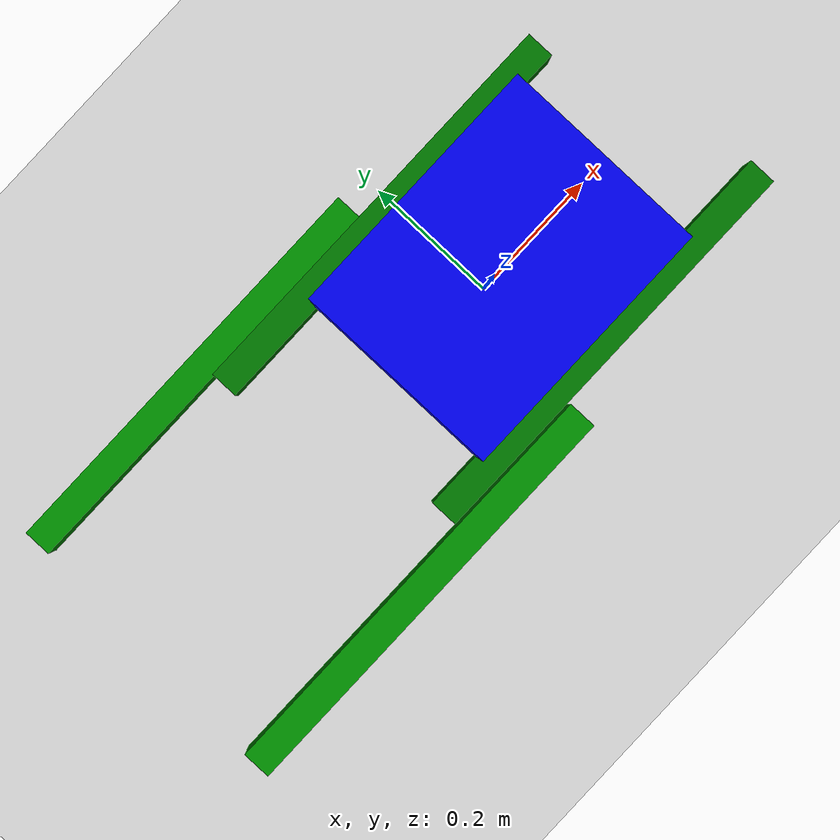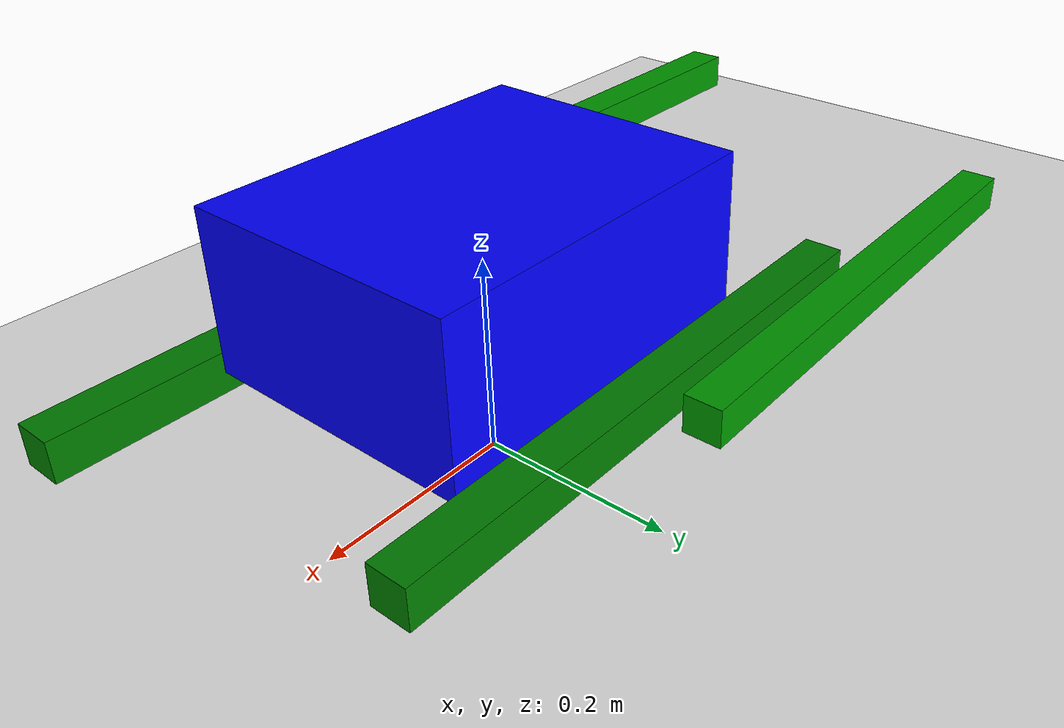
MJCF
<mujoco>
    <worldbody>
    <light diffuse=".5 .5 .5" pos="0 0 3" dir="0 0 -1"/>
    <geom type="plane" size="5 5 0.1" rgba=".9 0.9 0.9 1"/>
    <body name="main body" pos="0 0 .2">
        <joint type="free"/>
        <geom type="box" size="0.18 0.14 0.08" rgba="0 0 1 1" mass="1"/>
        <site name="marker" pos="0 0 0" size="0.05"/>
        <site name="robot_center" pos="0 0 0" size="0.01"/>
        <body name="left_leg1" pos="-0.033946543420213804 0.16 -0.09086588941426821">
            <joint name="left_leg1_joint" type="hinge" axis="0 1 0" pos="0 0 0"/>
            <geom type="box" size="0.3 0.02 0.02" rgba="0 .5 0 1" mass="1"/>
            <body name="left_leg2" pos="-0.32011902421938454 0.04 -0.02301128123813614">
                <joint name="left_leg2_joint" type="hinge" axis="0 1 0" pos="0 0 0"/>
                <geom type="box" size="0.3 0.02 0.02" rgba="0 .6 0 1" mass="1"/>
            </body>
        </body>
        <body name="right_leg1" pos="0.038392999166077746 -0.16 -0.08020532093308955">
            <joint name="right_leg1_joint" type="hinge" axis="0 1 0" pos="0 0 0"/>
            <geom type="box" size="0.3 0.02 0.02" rgba="0 .5 0 1" mass="1"/>
            <body name="right_leg2" pos="-0.38956892248229835 -0.04 0.03720473407342718">
                <joint name="right_leg2_joint" type="hinge" axis="0 1 0" pos="0 0 0"/>
                <geom type="box" size="0.3 0.02 0.02" rgba="0 .6 0 1" mass="1"/>
            </body>
        </body>
    </body>
    </worldbody>
    <sensor>
        <framepos objtype="site" objname="marker"/>
        <velocimeter name="robot_velocity" site="robot_center"/>
    </sensor>
    <actuator>
        <position joint="left_leg1_joint" kp="10"/>
        <position joint="left_leg2_joint" kp="10"/>
        <position joint="right_leg1_joint" kp="10"/>
        <position joint="right_leg2_joint" kp="10"/>
    </actuator>
</mujoco>
